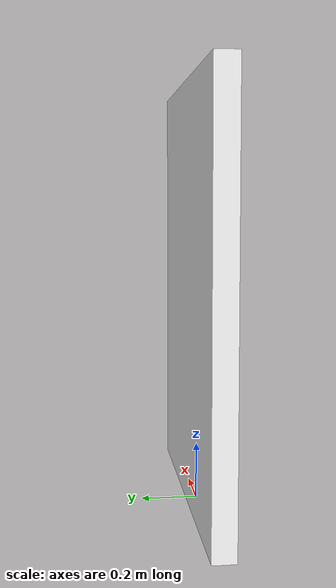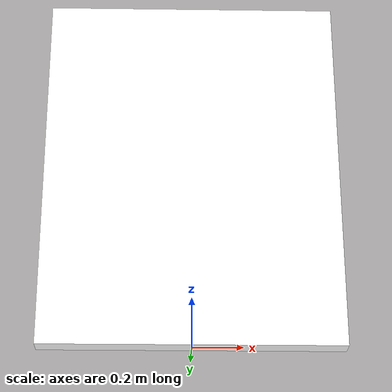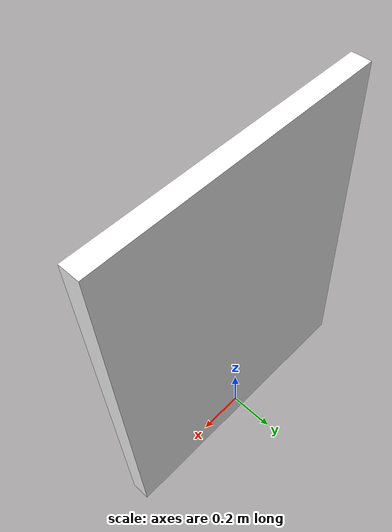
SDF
<?xml version="1.0"?>
<sdf version="1.8">
  <model name="checker_panel">
    <static>true</static>
    <link name="link">
      <pose>0 0 0.75 0 0 0</pose>
      <collision name="col">
        <geometry><box><size>1.2 0.08 1.5</size></box></geometry>
      </collision>
      <visual name="vis">
        <cast_shadows>false</cast_shadows>
        <geometry><box><size>1.2 0.08 1.5</size></box></geometry>
        <material>
          <ambient>0.8 0.8 0.8 1</ambient>
          <diffuse>1 1 1 1</diffuse>
          <pbr><metal><albedo_map>model://textures/checker.png</albedo_map></metal></pbr>
        </material>
      </visual>
    </link>
  </model>
</sdf>
